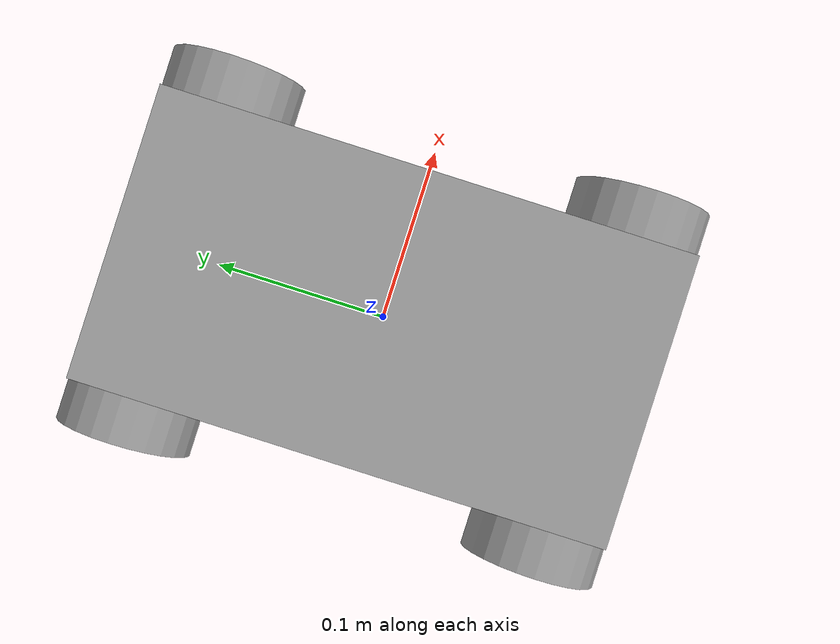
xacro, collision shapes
<?xml version="1.0" ?>
<robot name="robot" xmlns:xacro="http://www.ros.org/wiki/xacro">

<xacro:include filename="$(find robot_description)/urdf/materials.xacro" />
<xacro:include filename="$(find robot_description)/urdf/macros.xacro" />
<xacro:include filename="$(find robot_description)/urdf/robot.control" />
<xacro:include filename="$(find robot_description)/urdf/robot.gazebo" />

<!-- Properties -->

<xacro:property name="chassis_length" value="0.18" />
<xacro:property name="chassis_width" value="0.33" />
<xacro:property name="chassis_height" value="0.135" />
<xacro:property name="chassis_weight" value="2.45" />

<xacro:property name="wheel_radius" value="0.047" />
<xacro:property name="wheel_thickness" value="0.042" />
<xacro:property name="wheel_weight" value=".136" />

<xacro:property name="joint_pos_x" value="0.09" />
<xacro:property name="joint_pos_y" value="0.145" />
<xacro:property name="joint_pos_z" value="0.121" />

<!-- Links -->

<link name="base_link"></link>

<joint name="chassis_joint" type="fixed">
  <parent link="base_link"/>
  <child link="chassis"/>
  <origin xyz="0 0 0"/>
</joint>

<link name="chassis">
  <xacro:inertial_box mass="${chassis_weight}" x="${chassis_length}" y="${chassis_width}" z="${chassis_height}">
    <origin xyz="0 0 -${chassis_height / 2}" rpy="0 0 0"/>
  </xacro:inertial_box>
  <visual>
    <origin xyz="0 0 0" rpy="0 0 0"/>
    <geometry>
      <mesh filename="package://robot_description/meshes/chassis.stl" scale="0.001 0.001 0.001"/>
    </geometry>
    <material name="silver"/>
  </visual>
  <collision>
    <origin xyz="0 0 -${chassis_height / 2}" rpy="0 0 0"/>
    <geometry>
      <box size="${chassis_length} ${chassis_width} ${chassis_height}"/>
    </geometry>
  </collision>
</link>

<link name="wheel_front_right">
  <xacro:inertial_cylinder mass="${wheel_weight}" length="${wheel_thickness}" radius="${wheel_radius}">
    <origin xyz="${wheel_thickness/2} 0 0" rpy="0 ${pi/2} 0"/>
  </xacro:inertial_cylinder>
  <visual>
    <origin xyz="0 0 0" rpy="0 ${pi} 0"/>
    <geometry>
      <mesh filename="package://robot_description/meshes/wheel_1.stl" scale="0.001 0.001 0.001"/>
    </geometry>
    <material name="silver"/>
  </visual>
  <collision>
    <origin xyz="${wheel_thickness/2} 0 0" rpy="0 ${pi/2} 0"/>
    <geometry>
      <cylinder radius="${wheel_radius}" length="${wheel_thickness}"/>
    </geometry>
  </collision>
</link>

<link name="wheel_front_left">
  <xacro:inertial_cylinder mass="${wheel_weight}" length="${wheel_thickness}" radius="${wheel_radius}">
    <origin xyz="-${wheel_thickness/2} 0 0" rpy="0 ${pi/2} 0"/>
  </xacro:inertial_cylinder>
  <visual>
    <origin xyz="0 0 0" rpy="0 ${pi/2} 0"/>
    <geometry>
      <mesh filename="package://robot_description/meshes/wheel_2.stl" scale="0.001 0.001 0.001"/>
    </geometry>
    <material name="silver"/>
  </visual>
  <collision>
    <origin xyz="-${wheel_thickness/2} 0 0" rpy="0 ${pi/2} 0"/>
    <geometry>
      <cylinder radius="${wheel_radius}" length="${wheel_thickness}"/>
    </geometry>
  </collision>
</link>

<link name="wheel_rear_right">
  <xacro:inertial_cylinder mass="${wheel_weight}" length="${wheel_thickness}" radius="${wheel_radius}">
    <origin xyz="${wheel_thickness/2} 0 0" rpy="0 ${pi/2} 0"/>
  </xacro:inertial_cylinder>
  <visual>
    <origin xyz="0 0 0" rpy="0 -${pi/2} 0"/>
    <geometry>
      <mesh filename="package://robot_description/meshes/wheel_2.stl" scale="0.001 0.001 0.001"/>
    </geometry>
    <material name="silver"/>
  </visual>
  <collision>
    <origin xyz="${wheel_thickness/2} 0 0" rpy="0 ${pi/2} 0"/>
    <geometry>
      <cylinder radius="${wheel_radius}" length="${wheel_thickness}"/>
    </geometry>
  </collision>
</link>

<link name="wheel_rear_left">
  <xacro:inertial_cylinder mass="${wheel_weight}" length="${wheel_thickness}" radius="${wheel_radius}">
    <origin xyz="-${wheel_thickness/2} 0 0" rpy="0 ${pi/2} 0"/>
  </xacro:inertial_cylinder>
  <visual>
    <origin xyz="0 0 0" rpy="0 0 0"/>
    <geometry>
      <mesh filename="package://robot_description/meshes/wheel_1.stl" scale="0.001 0.001 0.001"/>
    </geometry>
    <material name="silver"/>
  </visual>
  <collision>
    <origin xyz="-${wheel_thickness/2} 0 0" rpy="0 ${pi/2} 0"/>
    <geometry>
      <cylinder radius="${wheel_radius}" length="${wheel_thickness}"/>
    </geometry>
  </collision>
</link>

<joint name="wheel_FR_joint" type="continuous">
  <origin xyz="${joint_pos_x} ${joint_pos_y} -${joint_pos_z}" rpy="0 0 0"/>
  <parent link="chassis"/>
  <child link="wheel_front_right"/>
  <axis xyz="1.0 0.0 0.0"/>
</joint>

<joint name="wheel_FL_joint" type="continuous">
  <origin xyz="-${joint_pos_x} ${joint_pos_y} -${joint_pos_z}" rpy="0 0 0"/>
  <parent link="chassis"/>
  <child link="wheel_front_left"/>
  <axis xyz="1.0 0.0 0.0"/>
</joint>

<joint name="wheel_RR_joint" type="continuous">
  <origin xyz="${joint_pos_x} -${joint_pos_y} -${joint_pos_z}" rpy="0 0 0"/>
  <parent link="chassis"/>
  <child link="wheel_rear_right"/>
  <axis xyz="1.0 0.0 0.0"/>
</joint>

<joint name="wheel_RL_joint" type="continuous">
  <origin xyz="-${joint_pos_x} -${joint_pos_y} -${joint_pos_z}" rpy="0 0 0"/>
  <parent link="chassis"/>
  <child link="wheel_rear_left"/>
  <axis xyz="1.0 0.0 0.0"/>
</joint>

</robot>

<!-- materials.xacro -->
<!--
Copied from ROS1 example:
https://github.com/ros-simulation/gazebo_ros_demos/blob/kinetic-devel/rrbot_description/urdf/materials.xacro
-->
<robot>

  <material name="black">
    <color rgba="0.0 0.0 0.0 1.0"/>
  </material>

  <material name="blue">
    <color rgba="${35/255} ${110/255} ${150/255} 1.0"/>
  </material>

  <material name="green">
    <color rgba="0.0 0.8 0.0 1.0"/>
  </material>

  <material name="grey">
    <color rgba="0.2 0.2 0.2 1.0"/>
  </material>

  <material name="yellow">
    <color rgba="${255/255} ${215/255} ${0/255} 1"/>
  </material>

  <material name="orange">
    <color rgba="${243/255} ${135/255} ${47/255} 1"/>
  </material>

  <material name="brown">
    <color rgba="${222/255} ${207/255} ${195/255} 1.0"/>
  </material>

  <material name="red">
    <color rgba="0.8 0.0 0.0 1.0"/>
  </material>

  <material name="white">
    <color rgba="1.0 1.0 1.0 1.0"/>
  </material>

  <material name="silver">
    <color rgba="0.700 0.700 0.700 1.000"/>
  </material>

</robot>

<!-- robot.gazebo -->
<robot xmlns:xacro="http://www.ros.org/wiki/xacro" >

  <xacro:property name="body_color" value="Gazebo/Silver" />

  <gazebo reference="chassis">
    <material>${body_color}</material>
    <kp>1000000000000000000000000000.0</kp>
    <kd>1000000000000000000000000000.0</kd>
    <mu1 value="1000.0"/>
    <mu2 value="100.0"/>
    <selfCollide></selfCollide>
  </gazebo>

  <gazebo reference="wheel_front_right">
    <material>${body_color}</material>
    <kp>1000000000000000000000000000.0</kp>
    <kd>1000000000000000000000000000.0</kd>
    <mu1 value="1000.0"/>
    <mu2 value="100.0"/>
    <selfCollide></selfCollide>
  </gazebo>

  <gazebo reference="wheel_front_left">
    <material>${body_color}</material>
    <kp>1000000000000000000000000000.0</kp>
    <kd>1000000000000000000000000000.0</kd>
    <mu1 value="1000.0"/>
    <mu2 value="100.0"/>
    <selfCollide></selfCollide>
  </gazebo>

  <gazebo reference="wheel_rear_right">
    <material>${body_color}</material>
    <kp>1000000000000000000000000000.0</kp>
    <kd>1000000000000000000000000000.0</kd>
    <mu1 value="1000.0"/>
    <mu2 value="100.0"/>
    <selfCollide></selfCollide>
  </gazebo>

  <gazebo reference="wheel_rear_left">
    <material>Gazebo/Green</material>
    <kp>1000000000000000000000000000.0</kp>
    <kd>1000000000000000000000000000.0</kd>
    <mu1 value="1000.0"/>
    <mu2 value="100.0"/>
    <selfCollide></selfCollide>
  </gazebo>

</robot>
